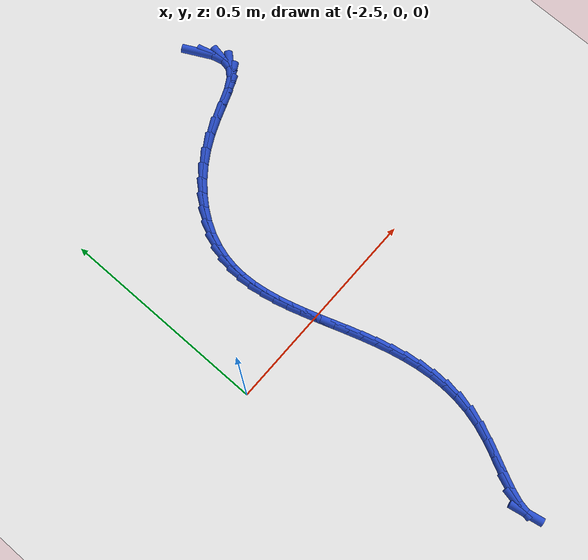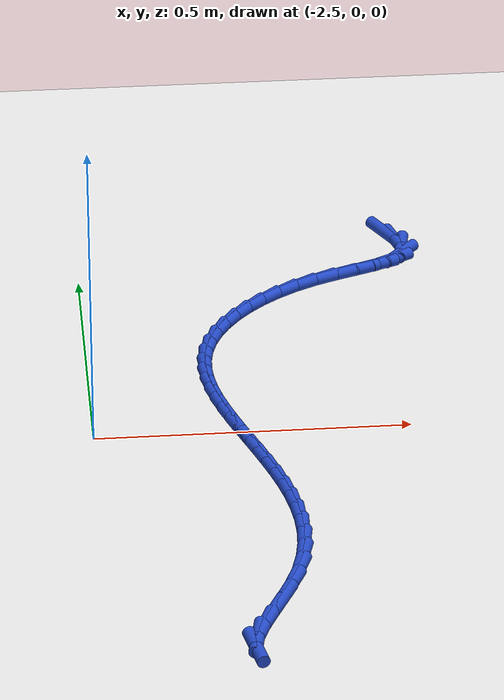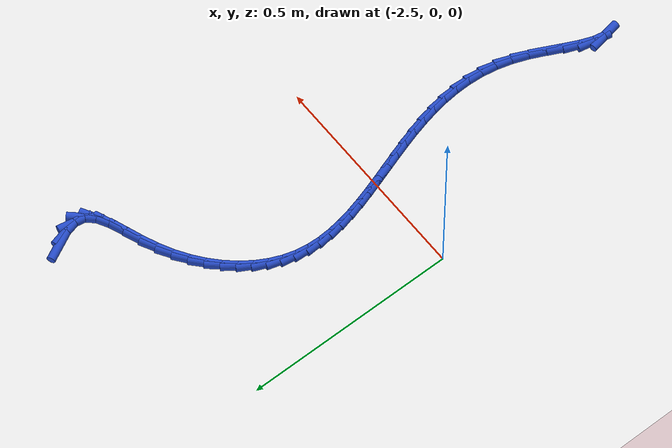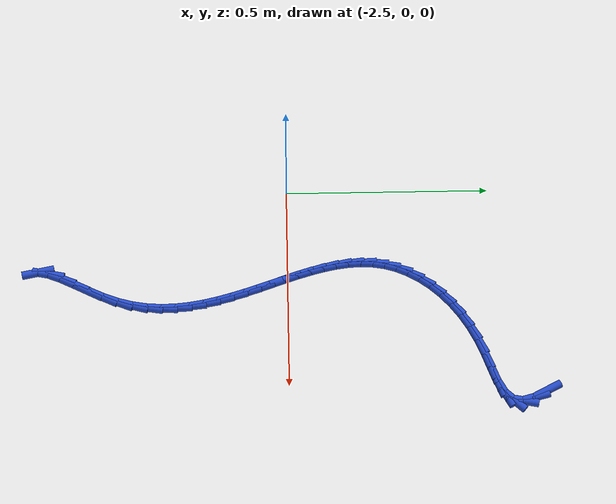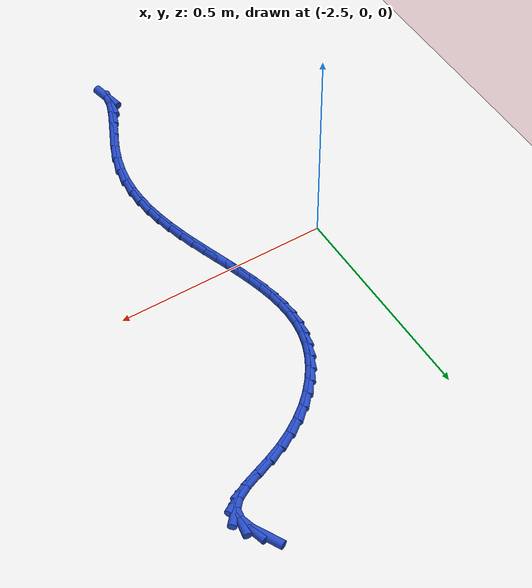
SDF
<sdf version="1.6">
 <world name="default">
  <model name="ground_plane">
   <static>1</static>
   <link name="link">
    <collision name="collision">
     <geometry><plane><normal>0 0 1</normal><size>100 100</size></plane></geometry>
     <surface><friction><ode><mu>100</mu><mu2>50</mu2></ode></friction></surface>
    </collision>
    <visual name="visual">
     <cast_shadows>0</cast_shadows>
     <geometry><plane><normal>0 0 1</normal><size>100 100</size></plane></geometry>
     <material>
      <script><uri>file://media/materials/scripts/gazebo.material</uri><name>Gazebo/WhiteGlow</name></script>
     </material>
    </visual>
   </link>
  </model>
  <model name="line">
   <link name="link_108">
    <pose>-1.9743367637932747 0.6200798682362391 0.01 0 1.57 -1.0974962473327659</pose>
    <collision name="collision">
     <geometry><cylinder><radius>0.01</radius><length>0.08</length></cylinder></geometry>
    </collision>
    <visual name="visual">
     <material>
      <script><name>Gazebo/Blue</name><uri>file://media/materials/scripts/gazebo.material</uri></script>
     </material>
     <geometry><cylinder><radius>0.01</radius><length>0.08</length></cylinder></geometry>
    </visual>
   </link>
   <link name="link_109">
    <pose>-1.958635053839173 0.5894199201951325 0.01 0 1.57 -1.3182078995816908</pose>
    <collision name="collision">
     <geometry><cylinder><radius>0.01</radius><length>0.08</length></cylinder></geometry>
    </collision>
    <visual name="visual">
     <material>
      <script><name>Gazebo/Blue</name><uri>file://media/materials/scripts/gazebo.material</uri></script>
     </material>
     <geometry><cylinder><radius>0.01</radius><length>0.08</length></cylinder></geometry>
    </visual>
   </link>
   <link name="link_110">
    <pose>-1.9515202767065594 0.5618540497654962 0.01 0 1.57 1.3878585562084265</pose>
    <collision name="collision">
     <geometry><cylinder><radius>0.01</radius><length>0.08</length></cylinder></geometry>
    </collision>
    <visual name="visual">
     <material>
      <script><name>Gazebo/Blue</name><uri>file://media/materials/scripts/gazebo.material</uri></script>
     </material>
     <geometry><cylinder><radius>0.01</radius><length>0.08</length></cylinder></geometry>
    </visual>
   </link>
   <link name="link_111">
    <pose>-1.9558476720208795 0.5384635088876819 0.01 0 1.57 0.8302297515361479</pose>
    <collision name="collision">
     <geometry><cylinder><radius>0.01</radius><length>0.08</length></cylinder></geometry>
    </collision>
    <visual name="visual">
     <material>
      <script><name>Gazebo/Blue</name><uri>file://media/materials/scripts/gazebo.material</uri></script>
     </material>
     <geometry><cylinder><radius>0.01</radius><length>0.08</length></cylinder></geometry>
    </visual>
   </link>
   <link name="link_112">
    <pose>-1.9730012425208192 0.5196985751083933 0.01 0 1.57 0.5169990008128384</pose>
    <collision name="collision">
     <geometry><cylinder><radius>0.01</radius><length>0.08</length></cylinder></geometry>
    </collision>
    <visual name="visual">
     <material>
      <script><name>Gazebo/Blue</name><uri>file://media/materials/scripts/gazebo.material</uri></script>
     </material>
     <geometry><cylinder><radius>0.01</radius><length>0.08</length></cylinder></geometry>
    </visual>
   </link>
   <link name="link_113">
    <pose>-2.000210555757395 0.5042277991517732 0.01 0 1.57 0.3884897764655101</pose>
    <collision name="collision">
     <geometry><cylinder><radius>0.01</radius><length>0.08</length></cylinder></geometry>
    </collision>
    <visual name="visual">
     <material>
      <script><name>Gazebo/Blue</name><uri>file://media/materials/scripts/gazebo.material</uri></script>
     </material>
     <geometry><cylinder><radius>0.01</radius><length>0.08</length></cylinder></geometry>
    </visual>
   </link>
   <link name="link_114">
    <pose>-2.0339770902257333 0.49040747369929666 0.01 0 1.57 0.358868739822062</pose>
    <collision name="collision">
     <geometry><cylinder><radius>0.01</radius><length>0.08</length></cylinder></geometry>
    </collision>
    <visual name="visual">
     <material>
      <script><name>Gazebo/Blue</name><uri>file://media/materials/scripts/gazebo.material</uri></script>
     </material>
     <geometry><cylinder><radius>0.01</radius><length>0.08</length></cylinder></geometry>
    </visual>
   </link>
   <link name="link_115">
    <pose>-2.0708023244209643 0.47659389143243924 0.01 0 1.57 0.40065028314589063</pose>
    <collision name="collision">
     <geometry><cylinder><radius>0.01</radius><length>0.08</length></cylinder></geometry>
    </collision>
    <visual name="visual">
     <material>
      <script><name>Gazebo/Blue</name><uri>file://media/materials/scripts/gazebo.material</uri></script>
     </material>
     <geometry><cylinder><radius>0.01</radius><length>0.08</length></cylinder></geometry>
    </visual>
   </link>
   <link name="link_116">
    <pose>-2.1072274582241817 0.46116566344971716 0.01 0 1.57 0.4839175361771799</pose>
    <collision name="collision">
     <geometry><cylinder><radius>0.01</radius><length>0.08</length></cylinder></geometry>
    </collision>
    <visual name="visual">
     <material>
      <script><name>Gazebo/Blue</name><uri>file://media/materials/scripts/gazebo.material</uri></script>
     </material>
     <geometry><cylinder><radius>0.01</radius><length>0.08</length></cylinder></geometry>
    </visual>
   </link>
   <link name="link_117">
    <pose>-2.1412166566256827 0.44330092805565163 0.01 0 1.57 0.5713751046759274</pose>
    <collision name="collision">
     <geometry><cylinder><radius>0.01</radius><length>0.08</length></cylinder></geometry>
    </collision>
    <visual name="visual">
     <material>
      <script><name>Gazebo/Blue</name><uri>file://media/materials/scripts/gazebo.material</uri></script>
     </material>
     <geometry><cylinder><radius>0.01</radius><length>0.08</length></cylinder></geometry>
    </visual>
   </link>
   <link name="link_118">
    <pose>-2.1725153539407573 0.42317867261096714 0.01 0 1.57 0.6609825471524344</pose>
    <collision name="collision">
     <geometry><cylinder><radius>0.01</radius><length>0.08</length></cylinder></geometry>
    </collision>
    <visual name="visual">
     <material>
      <script><name>Gazebo/Blue</name><uri>file://media/materials/scripts/gazebo.material</uri></script>
     </material>
     <geometry><cylinder><radius>0.01</radius><length>0.08</length></cylinder></geometry>
    </visual>
   </link>
   <link name="link_119">
    <pose>-2.200981501654681 0.40104110495731643 0.01 0 1.57 0.7534089482174787</pose>
    <collision name="collision">
     <geometry><cylinder><radius>0.01</radius><length>0.08</length></cylinder></geometry>
    </collision>
    <visual name="visual">
     <material>
      <script><name>Gazebo/Blue</name><uri>file://media/materials/scripts/gazebo.material</uri></script>
     </material>
     <geometry><cylinder><radius>0.01</radius><length>0.08</length></cylinder></geometry>
    </visual>
   </link>
   <link name="link_120">
    <pose>-2.2264730512527287 0.377130432936351 0.01 0 1.57 0.8494445316289111</pose>
    <collision name="collision">
     <geometry><cylinder><radius>0.01</radius><length>0.08</length></cylinder></geometry>
    </collision>
    <visual name="visual">
     <material>
      <script><name>Gazebo/Blue</name><uri>file://media/materials/scripts/gazebo.material</uri></script>
     </material>
     <geometry><cylinder><radius>0.01</radius><length>0.08</length></cylinder></geometry>
    </visual>
   </link>
   <link name="link_121">
    <pose>-2.248847954220177 0.35168886438972324 0.01 0 1.57 0.9499731843160755</pose>
    <collision name="collision">
     <geometry><cylinder><radius>0.01</radius><length>0.08</length></cylinder></geometry>
    </collision>
    <visual name="visual">
     <material>
      <script><name>Gazebo/Blue</name><uri>file://media/materials/scripts/gazebo.material</uri></script>
     </material>
     <geometry><cylinder><radius>0.01</radius><length>0.08</length></cylinder></geometry>
    </visual>
   </link>
   <link name="link_122">
    <pose>-2.2679641620423 0.32495860715908503 0.01 0 1.57 1.0559203277866167</pose>
    <collision name="collision">
     <geometry><cylinder><radius>0.01</radius><length>0.08</length></cylinder></geometry>
    </collision>
    <visual name="visual">
     <material>
      <script><name>Gazebo/Blue</name><uri>file://media/materials/scripts/gazebo.material</uri></script>
     </material>
     <geometry><cylinder><radius>0.01</radius><length>0.08</length></cylinder></geometry>
    </visual>
   </link>
   <link name="link_123">
    <pose>-2.2836796262043753 0.2971818690860883 0.01 0 1.57 1.168163044600821</pose>
    <collision name="collision">
     <geometry><cylinder><radius>0.01</radius><length>0.08</length></cylinder></geometry>
    </collision>
    <visual name="visual">
     <material>
      <script><name>Gazebo/Blue</name><uri>file://media/materials/scripts/gazebo.material</uri></script>
     </material>
     <geometry><cylinder><radius>0.01</radius><length>0.08</length></cylinder></geometry>
    </visual>
   </link>
   <link name="link_124">
    <pose>-2.2958522981916762 0.26860085801238565 0.01 0 1.57 1.2873878753655927</pose>
    <collision name="collision">
     <geometry><cylinder><radius>0.01</radius><length>0.08</length></cylinder></geometry>
    </collision>
    <visual name="visual">
     <material>
      <script><name>Gazebo/Blue</name><uri>file://media/materials/scripts/gazebo.material</uri></script>
     </material>
     <geometry><cylinder><radius>0.01</radius><length>0.08</length></cylinder></geometry>
    </visual>
   </link>
   <link name="link_125">
    <pose>-2.3043401738719904 0.23945776193667304 0.01 0 1.57 1.4103929529844468</pose>
    <collision name="collision">
     <geometry><cylinder><radius>0.01</radius><length>0.08</length></cylinder></geometry>
    </collision>
    <visual name="visual">
     <material>
      <script><name>Gazebo/Blue</name><uri>file://media/materials/scripts/gazebo.material</uri></script>
     </material>
     <geometry><cylinder><radius>0.01</radius><length>0.08</length></cylinder></geometry>
    </visual>
   </link>
   <link name="link_126">
    <pose>-2.3091153438890992 0.20994375827736073 0.01 0 1.57 1.524088984114763</pose>
    <collision name="collision">
     <geometry><cylinder><radius>0.01</radius><length>0.08</length></cylinder></geometry>
    </collision>
    <visual name="visual">
     <material>
      <script><name>Gazebo/Blue</name><uri>file://media/materials/scripts/gazebo.material</uri></script>
     </material>
     <geometry><cylinder><radius>0.01</radius><length>0.08</length></cylinder></geometry>
    </visual>
   </link>
   <link name="link_127">
    <pose>-2.3105108109064987 0.18008866446598176 0.01 0 1.57 -1.5185216347494759</pose>
    <collision name="collision">
     <geometry><cylinder><radius>0.01</radius><length>0.08</length></cylinder></geometry>
    </collision>
    <visual name="visual">
     <material>
      <script><name>Gazebo/Blue</name><uri>file://media/materials/scripts/gazebo.material</uri></script>
     </material>
     <geometry><cylinder><radius>0.01</radius><length>0.08</length></cylinder></geometry>
    </visual>
   </link>
   <link name="link_128">
    <pose>-2.3089307700225126 0.149890468541523 0.01 0 1.57 -1.435707166058461</pose>
    <collision name="collision">
     <geometry><cylinder><radius>0.01</radius><length>0.08</length></cylinder></geometry>
    </collision>
    <visual name="visual">
     <material>
      <script><name>Gazebo/Blue</name><uri>file://media/materials/scripts/gazebo.material</uri></script>
     </material>
     <geometry><cylinder><radius>0.01</radius><length>0.08</length></cylinder></geometry>
    </visual>
   </link>
   <link name="link_129">
    <pose>-2.3047794163354647 0.11934715854297169 0.01 0 1.57 -1.3690348179452552</pose>
    <collision name="collision">
     <geometry><cylinder><radius>0.01</radius><length>0.08</length></cylinder></geometry>
    </collision>
    <visual name="visual">
     <material>
      <script><name>Gazebo/Blue</name><uri>file://media/materials/scripts/gazebo.material</uri></script>
     </material>
     <geometry><cylinder><radius>0.01</radius><length>0.08</length></cylinder></geometry>
    </visual>
   </link>
   <link name="link_130">
    <pose>-2.29846094494368 0.08845672250931526 0.01 0 1.57 -1.317654852695425</pose>
    <collision name="collision">
     <geometry><cylinder><radius>0.01</radius><length>0.08</length></cylinder></geometry>
    </collision>
    <visual name="visual">
     <material>
      <script><name>Gazebo/Blue</name><uri>file://media/materials/scripts/gazebo.material</uri></script>
     </material>
     <geometry><cylinder><radius>0.01</radius><length>0.08</length></cylinder></geometry>
    </visual>
   </link>
   <link name="link_131">
    <pose>-2.290379550945479 0.0572171484795408 0.01 0 1.57 -1.2804171819577794</pose>
    <collision name="collision">
     <geometry><cylinder><radius>0.01</radius><length>0.08</length></cylinder></geometry>
    </collision>
    <visual name="visual">
     <material>
      <script><name>Gazebo/Blue</name><uri>file://media/materials/scripts/gazebo.material</uri></script>
     </material>
     <geometry><cylinder><radius>0.01</radius><length>0.08</length></cylinder></geometry>
    </visual>
   </link>
   <link name="link_132">
    <pose>-2.2809394294391883 0.02562642449263578 0.01 0 1.57 -1.2561994726634287</pose>
    <collision name="collision">
     <geometry><cylinder><radius>0.01</radius><length>0.08</length></cylinder></geometry>
    </collision>
    <visual name="visual">
     <material>
      <script><name>Gazebo/Blue</name><uri>file://media/materials/scripts/gazebo.material</uri></script>
     </material>
     <geometry><cylinder><radius>0.01</radius><length>0.08</length></cylinder></geometry>
    </visual>
   </link>
   <link name="link_133">
    <pose>-2.2705447755231307 -0.006317461412413572 0.01 0 1.57 -1.2440763853396017</pose>
    <collision name="collision">
     <geometry><cylinder><radius>0.01</radius><length>0.08</length></cylinder></geometry>
    </collision>
    <visual name="visual">
     <material>
      <script><name>Gazebo/Blue</name><uri>file://media/materials/scripts/gazebo.material</uri></script>
     </material>
     <geometry><cylinder><radius>0.01</radius><length>0.08</length></cylinder></geometry>
    </visual>
   </link>
   <link name="link_134">
    <pose>-2.259599784295631 -0.038616521196618014 0.01 0 1.57 -1.243386971336205</pose>
    <collision name="collision">
     <geometry><cylinder><radius>0.01</radius><length>0.08</length></cylinder></geometry>
    </collision>
    <visual name="visual">
     <material>
      <script><name>Gazebo/Blue</name><uri>file://media/materials/scripts/gazebo.material</uri></script>
     </material>
     <geometry><cylinder><radius>0.01</radius><length>0.08</length></cylinder></geometry>
    </visual>
   </link>
   <link name="link_135">
    <pose>-2.2485086508550105 -0.07127276682099115 0.01 0 1.57 -1.2537436312408852</pose>
    <collision name="collision">
     <geometry><cylinder><radius>0.01</radius><length>0.08</length></cylinder></geometry>
    </collision>
    <visual name="visual">
     <material>
      <script><name>Gazebo/Blue</name><uri>file://media/materials/scripts/gazebo.material</uri></script>
     </material>
     <geometry><cylinder><radius>0.01</radius><length>0.08</length></cylinder></geometry>
    </visual>
   </link>
   <link name="link_136">
    <pose>-2.2376755702995954 -0.1042882102465458 0.01 0 1.57 -1.2750067100837625</pose>
    <collision name="collision">
     <geometry><cylinder><radius>0.01</radius><length>0.08</length></cylinder></geometry>
    </collision>
    <visual name="visual">
     <material>
      <script><name>Gazebo/Blue</name><uri>file://media/materials/scripts/gazebo.material</uri></script>
     </material>
     <geometry><cylinder><radius>0.01</radius><length>0.08</length></cylinder></geometry>
    </visual>
   </link>
   <link name="link_137">
    <pose>-2.227504737727709 -0.13766486343429463 0.01 0 1.57 -1.3072330289081524</pose>
    <collision name="collision">
     <geometry><cylinder><radius>0.01</radius><length>0.08</length></cylinder></geometry>
    </collision>
    <visual name="visual">
     <material>
      <script><name>Gazebo/Blue</name><uri>file://media/materials/scripts/gazebo.material</uri></script>
     </material>
     <geometry><cylinder><radius>0.01</radius><length>0.08</length></cylinder></geometry>
    </visual>
   </link>
   <link name="link_138">
    <pose>-2.218400348237674 -0.1714047383452503 0.01 0 1.57 -1.3505956504283625</pose>
    <collision name="collision">
     <geometry><cylinder><radius>0.01</radius><length>0.08</length></cylinder></geometry>
    </collision>
    <visual name="visual">
     <material>
      <script><name>Gazebo/Blue</name><uri>file://media/materials/scripts/gazebo.material</uri></script>
     </material>
     <geometry><cylinder><radius>0.01</radius><length>0.08</length></cylinder></geometry>
    </visual>
   </link>
   <link name="link_139">
    <pose>-2.2107665969278143 -0.2055098469404255 0.01 0 1.57 -1.4052659156110083</pose>
    <collision name="collision">
     <geometry><cylinder><radius>0.01</radius><length>0.08</length></cylinder></geometry>
    </collision>
    <visual name="visual">
     <material>
      <script><name>Gazebo/Blue</name><uri>file://media/materials/scripts/gazebo.material</uri></script>
     </material>
     <geometry><cylinder><radius>0.01</radius><length>0.08</length></cylinder></geometry>
    </visual>
   </link>
   <link name="link_140">
    <pose>-2.205007678896455 -0.23998220118083408 0.01 0 1.57 -1.4712490604521573</pose>
    <collision name="collision">
     <geometry><cylinder><radius>0.01</radius><length>0.08</length></cylinder></geometry>
    </collision>
    <visual name="visual">
     <material>
      <script><name>Gazebo/Blue</name><uri>file://media/materials/scripts/gazebo.material</uri></script>
     </material>
     <geometry><cylinder><radius>0.01</radius><length>0.08</length></cylinder></geometry>
    </visual>
   </link>
   <link name="link_141">
    <pose>-2.201527789241918 -0.2748238130274866 0.01 0 1.57 -1.5481759031760154</pose>
    <collision name="collision">
     <geometry><cylinder><radius>0.01</radius><length>0.08</length></cylinder></geometry>
    </collision>
    <visual name="visual">
     <material>
      <script><name>Gazebo/Blue</name><uri>file://media/materials/scripts/gazebo.material</uri></script>
     </material>
     <geometry><cylinder><radius>0.01</radius><length>0.08</length></cylinder></geometry>
    </visual>
   </link>
   <link name="link_142">
    <pose>-2.2007311230625284 -0.3100366944413968 0.01 0 1.57 1.5065130227336976</pose>
    <collision name="collision">
     <geometry><cylinder><radius>0.01</radius><length>0.08</length></cylinder></geometry>
    </collision>
    <visual name="visual">
     <material>
      <script><name>Gazebo/Blue</name><uri>file://media/materials/scripts/gazebo.material</uri></script>
     </material>
     <geometry><cylinder><radius>0.01</radius><length>0.08</length></cylinder></geometry>
    </visual>
   </link>
   <link name="link_143">
    <pose>-2.20302187545661 -0.34562285738357745 0.01 0 1.57 1.4113675315619179</pose>
    <collision name="collision">
     <geometry><cylinder><radius>0.01</radius><length>0.08</length></cylinder></geometry>
    </collision>
    <visual name="visual">
     <material>
      <script><name>Gazebo/Blue</name><uri>file://media/materials/scripts/gazebo.material</uri></script>
     </material>
     <geometry><cylinder><radius>0.01</radius><length>0.08</length></cylinder></geometry>
    </visual>
   </link>
   <link name="link_144">
    <pose>-2.2088042415224862 -0.3815843138150412 0.01 0 1.57 1.3105064167471454</pose>
    <collision name="collision">
     <geometry><cylinder><radius>0.01</radius><length>0.08</length></cylinder></geometry>
    </collision>
    <visual name="visual">
     <material>
      <script><name>Gazebo/Blue</name><uri>file://media/materials/scripts/gazebo.material</uri></script>
     </material>
     <geometry><cylinder><radius>0.01</radius><length>0.08</length></cylinder></geometry>
    </visual>
   </link>
   <link name="link_145">
    <pose>-2.21848241635848 -0.41792307569680065 0.01 0 1.57 1.2097294397612162</pose>
    <collision name="collision">
     <geometry><cylinder><radius>0.01</radius><length>0.08</length></cylinder></geometry>
    </collision>
    <visual name="visual">
     <material>
      <script><name>Gazebo/Blue</name><uri>file://media/materials/scripts/gazebo.material</uri></script>
     </material>
     <geometry><cylinder><radius>0.01</radius><length>0.08</length></cylinder></geometry>
    </visual>
   </link>
   <link name="link_146">
    <pose>-2.232330062074425 -0.45459378953833324 0.01 0 1.57 1.1399472200510583</pose>
    <collision name="collision">
     <geometry><cylinder><radius>0.01</radius><length>0.08</length></cylinder></geometry>
    </collision>
    <visual name="visual">
     <material>
      <script><name>Gazebo/Blue</name><uri>file://media/materials/scripts/gazebo.material</uri></script>
     </material>
     <geometry><cylinder><radius>0.01</radius><length>0.08</length></cylinder></geometry>
    </visual>
   </link>
   <link name="link_147">
    <pose>-2.249056551955302 -0.490983480994209 0.01 0 1.57 1.113497301865392</pose>
    <collision name="collision">
     <geometry><cylinder><radius>0.01</radius><length>0.08</length></cylinder></geometry>
    </collision>
    <visual name="visual">
     <material>
      <script><name>Gazebo/Blue</name><uri>file://media/materials/scripts/gazebo.material</uri></script>
     </material>
     <geometry><cylinder><radius>0.01</radius><length>0.08</length></cylinder></geometry>
    </visual>
   </link>
   <link name="link_148">
    <pose>-2.2663393432128465 -0.5261047326657824 0.01 0 1.57 1.1300733394044926</pose>
    <collision name="collision">
     <geometry><cylinder><radius>0.01</radius><length>0.08</length></cylinder></geometry>
    </collision>
    <visual name="visual">
     <material>
      <script><name>Gazebo/Blue</name><uri>file://media/materials/scripts/gazebo.material</uri></script>
     </material>
     <geometry><cylinder><radius>0.01</radius><length>0.08</length></cylinder></geometry>
    </visual>
   </link>
   <link name="link_149">
    <pose>-2.2818376453494307 -0.5589635057554542 0.01 0 1.57 1.2039892302416075</pose>
    <collision name="collision">
     <geometry><cylinder><radius>0.01</radius><length>0.08</length></cylinder></geometry>
    </collision>
    <visual name="visual">
     <material>
      <script><name>Gazebo/Blue</name><uri>file://media/materials/scripts/gazebo.material</uri></script>
     </material>
     <geometry><cylinder><radius>0.01</radius><length>0.08</length></cylinder></geometry>
    </visual>
   </link>
   <link name="link_150">
    <pose>-2.2932106678674216 -0.5885657614656219 0.01 0 1.57 1.3796053334478686</pose>
    <collision name="collision">
     <geometry><cylinder><radius>0.01</radius><length>0.08</length></cylinder></geometry>
    </collision>
    <visual name="visual">
     <material>
      <script><name>Gazebo/Blue</name><uri>file://media/materials/scripts/gazebo.material</uri></script>
     </material>
     <geometry><cylinder><radius>0.01</radius><length>0.08</length></cylinder></geometry>
    </visual>
   </link>
   <link name="link_151">
    <pose>-2.2981176202691915 -0.613917460998686 0.01 0 1.57 -1.379832687219352</pose>
    <collision name="collision">
     <geometry><cylinder><radius>0.01</radius><length>0.08</length></cylinder></geometry>
    </collision>
    <visual name="visual">
     <material>
      <script><name>Gazebo/Blue</name><uri>file://media/materials/scripts/gazebo.material</uri></script>
     </material>
     <geometry><cylinder><radius>0.01</radius><length>0.08</length></cylinder></geometry>
    </visual>
   </link>
  </model>
 </world>
</sdf>
